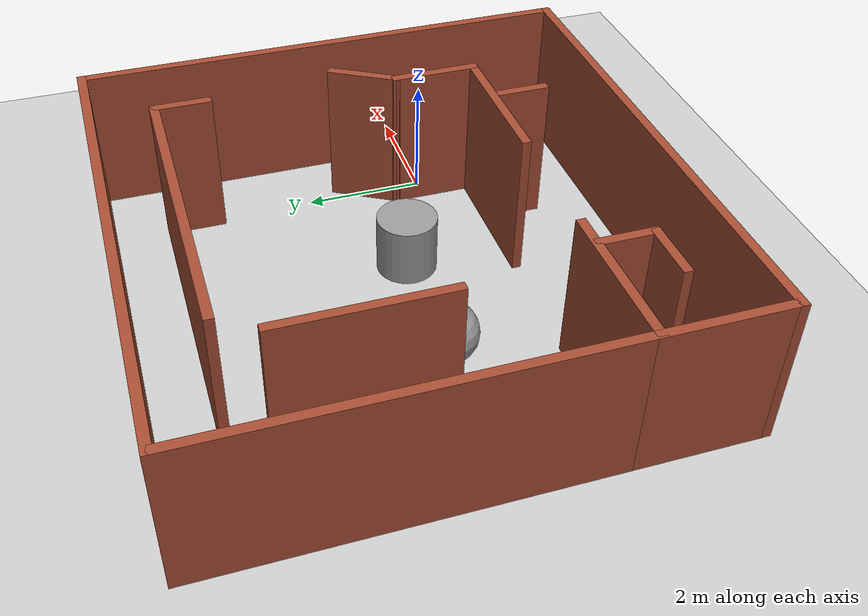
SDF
<sdf version="1.7">
 <world name="default">
  <light name="sun" type="directional">
   <pose>0 0 10 0 -0 0</pose>
   <diffuse>0.8 0.8 0.8 1</diffuse>
   <specular>0.2 0.2 0.2 1</specular>
   <attenuation>
    <range>1000</range>
    <constant>0.9</constant>
    <linear>0.01</linear>
    <quadratic>0.001</quadratic>
   </attenuation>
   <direction>-0.5 0.1 -0.9</direction>
   <spot><inner_angle>0</inner_angle><outer_angle>0</outer_angle><falloff>0</falloff></spot>
  </light>
  <model name="ground_plane">
   <static>1</static>
   <link name="link">
    <collision name="collision">
     <geometry><plane><normal>0 0 1</normal><size>100 100</size></plane></geometry>
     <surface><friction><ode><mu>100</mu><mu2>50</mu2></ode></friction></surface>
    </collision>
    <visual name="visual">
     <cast_shadows>0</cast_shadows>
     <geometry><plane><normal>0 0 1</normal><size>100 100</size></plane></geometry>
     <material>
      <script><uri>file://media/materials/scripts/gazebo.material</uri><name>Gazebo/Grey</name></script>
     </material>
    </visual>
   </link>
  </model>
  <gravity>0 0 -9.8</gravity>
  <magnetic_field>6e-06 2.3e-05 -4.2e-05</magnetic_field>
  <atmosphere type="adiabatic"/>
  <physics type="ode">
   <max_step_size>0.001</max_step_size>
   <real_time_factor>1</real_time_factor>
   <real_time_update_rate>1000</real_time_update_rate>
  </physics>
  <scene><ambient>0.4 0.4 0.4 1</ambient><background>0.7 0.7 0.7 1</background><shadows>1</shadows></scene>
  <audio><device>default</device></audio>
  <spherical_coordinates>
   <surface_model>EARTH_WGS84</surface_model>
   <latitude_deg>0</latitude_deg>
   <longitude_deg>0</longitude_deg>
   <elevation>0</elevation>
   <heading_deg>0</heading_deg>
  </spherical_coordinates>
  <model name="myturtlebot3_world">
   <pose>-2.975 1.33124 0 0 -0 0</pose>
   <link name="Wall_10">
    <collision name="Wall_10_Collision">
     <geometry><box><size>2.5 0.15 2.5</size></box></geometry>
     <pose>0 0 1.25 0 -0 0</pose>
    </collision>
    <visual name="Wall_10_Visual">
     <pose>0 0 1.25 0 -0 0</pose>
     <geometry><box><size>2.5 0.15 2.5</size></box></geometry>
     <material>
      <script><uri>file://media/materials/scripts/gazebo.material</uri><name>Gazebo/Bricks</name></script>
      <ambient>1 1 1 1</ambient>
     </material>
     <meta><layer>0</layer></meta>
    </visual>
    <pose>1.48861 -2.18806 0 0 -0 0</pose>
   </link>
   <link name="Wall_11">
    <collision name="Wall_11_Collision">
     <geometry><box><size>1.5 0.15 2.5</size></box></geometry>
     <pose>0 0 1.25 0 -0 0</pose>
    </collision>
    <visual name="Wall_11_Visual">
     <pose>0 0 1.25 0 -0 0</pose>
     <geometry><box><size>1.5 0.15 2.5</size></box></geometry>
     <material>
      <script><uri>file://media/materials/scripts/gazebo.material</uri><name>Gazebo/Bricks</name></script>
      <ambient>1 1 1 1</ambient>
     </material>
     <meta><layer>0</layer></meta>
    </visual>
    <pose>2.66361 -1.51306 0 0 -0 1.5708</pose>
   </link>
   <link name="Wall_12">
    <collision name="Wall_12_Collision">
     <geometry><box><size>1.25 0.15 2.5</size></box></geometry>
     <pose>0 0 1.25 0 -0 0</pose>
    </collision>
    <visual name="Wall_12_Visual">
     <pose>0 0 1.25 0 -0 0</pose>
     <geometry><box><size>1.25 0.15 2.5</size></box></geometry>
     <material>
      <script><uri>file://media/materials/scripts/gazebo.material</uri><name>Gazebo/Bricks</name></script>
      <ambient>1 1 1 1</ambient>
     </material>
     <meta><layer>0</layer></meta>
    </visual>
    <pose>2.93861 -0.36175 0 0 -0 1.0472</pose>
   </link>
   <link name="Wall_14">
    <collision name="Wall_14_Collision">
     <geometry><box><size>2.75 0.15 2.5</size></box></geometry>
     <pose>0 0 1.25 0 -0 0</pose>
    </collision>
    <visual name="Wall_14_Visual">
     <pose>0 0 1.25 0 -0 0</pose>
     <geometry><box><size>2.75 0.15 2.5</size></box></geometry>
     <material>
      <script><uri>file://media/materials/scripts/gazebo.material</uri><name>Gazebo/Bricks</name></script>
      <ambient>1 1 1 1</ambient>
     </material>
     <meta><layer>0</layer></meta>
    </visual>
    <pose>-2.60739 1.20494 0 0 -0 1.5708</pose>
   </link>
   <link name="Wall_17">
    <collision name="Wall_17_Collision">
     <geometry><box><size>5.25 0.15 2.5</size></box></geometry>
     <pose>0 0 1.25 0 -0 0</pose>
    </collision>
    <visual name="Wall_17_Visual">
     <pose>0 0 1.25 0 -0 0</pose>
     <geometry><box><size>5.25 0.15 2.5</size></box></geometry>
     <material>
      <script><uri>file://media/materials/scripts/gazebo.material</uri><name>Gazebo/Bricks</name></script>
      <ambient>1 1 1 1</ambient>
     </material>
     <meta><layer>0</layer></meta>
    </visual>
    <pose>0.356609 3.14794 0 0 -0 0</pose>
   </link>
   <link name="Wall_18">
    <collision name="Wall_18_Collision">
     <geometry><box><size>1 0.15 2.5</size></box></geometry>
     <pose>0 0 1.25 0 -0 0</pose>
    </collision>
    <visual name="Wall_18_Visual">
     <pose>0 0 1.25 0 -0 0</pose>
     <geometry><box><size>1 0.15 2.5</size></box></geometry>
     <material>
      <script><uri>file://media/materials/scripts/gazebo.material</uri><name>Gazebo/Bricks</name></script>
      <ambient>1 1 1 1</ambient>
     </material>
     <meta><layer>0</layer></meta>
    </visual>
    <pose>2.90661 2.72294 0 0 -0 -1.5708</pose>
   </link>
   <link name="Wall_20">
    <collision name="Wall_20_Collision">
     <geometry><box><size>1 0.15 2.5</size></box></geometry>
     <pose>0 0 1.25 0 -0 0</pose>
    </collision>
    <visual name="Wall_20_Visual">
     <pose>0 0 1.25 0 -0 0</pose>
     <geometry><box><size>1 0.15 2.5</size></box></geometry>
     <material>
      <script><uri>file://media/materials/scripts/gazebo.material</uri><name>Gazebo/Bricks</name></script>
      <ambient>1 1 1 1</ambient>
     </material>
     <meta><layer>0</layer></meta>
    </visual>
    <pose>1.71557 -2.65168 0 0 -0 -1.5708</pose>
   </link>
   <link name="Wall_22">
    <collision name="Wall_22_Collision">
     <geometry><box><size>1 0.15 2.5</size></box></geometry>
     <pose>0 0 1.25 0 -0 0</pose>
    </collision>
    <visual name="Wall_22_Visual">
     <pose>0 0 1.25 0 -0 0</pose>
     <geometry><box><size>1 0.15 2.5</size></box></geometry>
     <material>
      <script><uri>file://media/materials/scripts/gazebo.material</uri><name>Gazebo/Bricks</name></script>
      <ambient>1 1 1 1</ambient>
     </material>
     <meta><layer>0</layer></meta>
    </visual>
    <pose>-2.28643 -2.65168 0 0 -0 -1.5708</pose>
   </link>
   <link name="Wall_23">
    <collision name="Wall_23_Collision">
     <geometry><box><size>1 0.15 2.5</size></box></geometry>
     <pose>0 0 1.25 0 -0 0</pose>
    </collision>
    <visual name="Wall_23_Visual">
     <pose>0 0 1.25 0 -0 0</pose>
     <geometry><box><size>1 0.15 2.5</size></box></geometry>
     <material>
      <script><uri>file://media/materials/scripts/gazebo.material</uri><name>Gazebo/Bricks</name></script>
      <ambient>1 1 1 1</ambient>
     </material>
     <meta><layer>0</layer></meta>
    </visual>
    <pose>-2.71143 -3.07668 0 0 -0 3.14159</pose>
   </link>
   <link name="Wall_3">
    <collision name="Wall_3_Collision">
     <geometry><box><size>6.5 0.15 2.5</size></box></geometry>
     <pose>0 0 1.25 0 -0 0</pose>
    </collision>
    <visual name="Wall_3_Visual">
     <pose>0 0 1.25 0 -0 0</pose>
     <geometry><box><size>6.5 0.15 2.5</size></box></geometry>
     <material>
      <script><uri>file://media/materials/scripts/gazebo.material</uri><name>Gazebo/Bricks</name></script>
      <ambient>1 1 1 1</ambient>
     </material>
     <meta><layer>0</layer></meta>
    </visual>
    <pose>-4.175 1 0 0 -0 1.5708</pose>
   </link>
   <link name="Wall_4">
    <collision name="Wall_4_Collision">
     <geometry><box><size>8.5 0.15 2.5</size></box></geometry>
     <pose>0 0 1.25 0 -0 0</pose>
    </collision>
    <visual name="Wall_4_Visual">
     <pose>0 0 1.25 0 -0 0</pose>
     <geometry><box><size>8.5 0.15 2.5</size></box></geometry>
     <material>
      <script><uri>file://media/materials/scripts/gazebo.material</uri><name>Gazebo/Bricks</name></script>
      <ambient>1 1 1 1</ambient>
     </material>
     <meta><layer>0</layer></meta>
    </visual>
    <pose>0 4.175 0 0 -0 0</pose>
   </link>
   <link name="Wall_5">
    <collision name="Wall_5_Collision">
     <geometry><box><size>8.5 0.15 2.5</size></box></geometry>
     <pose>0 0 1.25 0 -0 0</pose>
    </collision>
    <visual name="Wall_5_Visual">
     <pose>0 0 1.25 0 -0 0</pose>
     <geometry><box><size>8.5 0.15 2.5</size></box></geometry>
     <material>
      <script><uri>file://media/materials/scripts/gazebo.material</uri><name>Gazebo/Bricks</name></script>
      <ambient>1 1 1 1</ambient>
     </material>
     <meta><layer>0</layer></meta>
    </visual>
    <pose>4.175 -0 0 0 -0 -1.5708</pose>
   </link>
   <link name="Wall_6">
    <collision name="Wall_6_Collision">
     <geometry><box><size>8.5 0.15 2.5</size></box></geometry>
     <pose>0 0 1.25 0 -0 0</pose>
    </collision>
    <visual name="Wall_6_Visual">
     <pose>0 0 1.25 0 -0 0</pose>
     <geometry><box><size>8.5 0.15 2.5</size></box></geometry>
     <material>
      <script><uri>file://media/materials/scripts/gazebo.material</uri><name>Gazebo/Bricks</name></script>
      <ambient>1 1 1 1</ambient>
     </material>
     <meta><layer>0</layer></meta>
    </visual>
    <pose>0 -4.175 0 0 -0 3.14159</pose>
   </link>
   <link name="Wall_7">
    <collision name="Wall_7_Collision">
     <geometry><box><size>2.15 0.15 2.5</size></box></geometry>
     <pose>0 0 1.25 0 -0 0</pose>
    </collision>
    <visual name="Wall_7_Visual">
     <pose>0 0 1.25 0 -0 0</pose>
     <geometry><box><size>2.15 0.15 2.5</size></box></geometry>
     <material>
      <script><uri>file://media/materials/scripts/gazebo.material</uri><name>Gazebo/Bricks</name></script>
      <ambient>1 1 1 1</ambient>
     </material>
     <meta><layer>0</layer></meta>
    </visual>
    <pose>-4.175 -3.175 0 0 -0 1.5708</pose>
   </link>
   <link name="Wall_8">
    <collision name="Wall_8_Collision">
     <geometry><box><size>2.5 0.15 2.5</size></box></geometry>
     <pose>0 0 1.25 0 -0 0</pose>
    </collision>
    <visual name="Wall_8_Visual">
     <pose>0 0 1.25 0 -0 0</pose>
     <geometry><box><size>2.5 0.15 2.5</size></box></geometry>
     <material>
      <script><uri>file://media/materials/scripts/gazebo.material</uri><name>Gazebo/Bricks</name></script>
      <ambient>1 1 1 1</ambient>
     </material>
     <meta><layer>0</layer></meta>
    </visual>
    <pose>-3 -2.175 0 0 -0 0</pose>
   </link>
   <static>1</static>
  </model>
  <model name="unit_cylinder">
   <pose>-2.12424 0.869684 0.499993 -3e-06 -4e-06 -0</pose>
   <link name="link">
    <inertial>
     <mass>1</mass>
     <inertia><ixx>0.145833</ixx><ixy>0</ixy><ixz>0</ixz><iyy>0.145833</iyy><iyz>0</iyz><izz>0.125</izz></inertia>
    </inertial>
    <collision name="collision">
     <geometry><cylinder><radius>0.5</radius><length>1</length></cylinder></geometry>
    </collision>
    <visual name="visual">
     <geometry><cylinder><radius>0.5</radius><length>1</length></cylinder></geometry>
     <material>
      <script><name>Gazebo/Grey</name><uri>file://media/materials/scripts/gazebo.material</uri></script>
     </material>
    </visual>
   </link>
  </model>
  <model name="unit_sphere">
   <pose>-4.36609 0.945211 0.5 0 -0 0</pose>
   <link name="link">
    <inertial>
     <mass>1</mass>
     <inertia><ixx>0.1</ixx><ixy>0</ixy><ixz>0</ixz><iyy>0.1</iyy><iyz>0</iyz><izz>0.1</izz></inertia>
    </inertial>
    <collision name="collision"><geometry><sphere><radius>0.5</radius></sphere></geometry></collision>
    <visual name="visual">
     <geometry><sphere><radius>0.5</radius></sphere></geometry>
     <material>
      <script><name>Gazebo/Grey</name><uri>file://media/materials/scripts/gazebo.material</uri></script>
     </material>
    </visual>
   </link>
  </model>
 </world>
</sdf>
